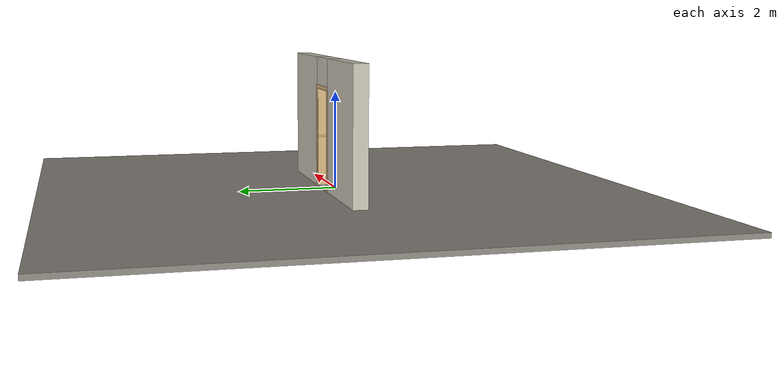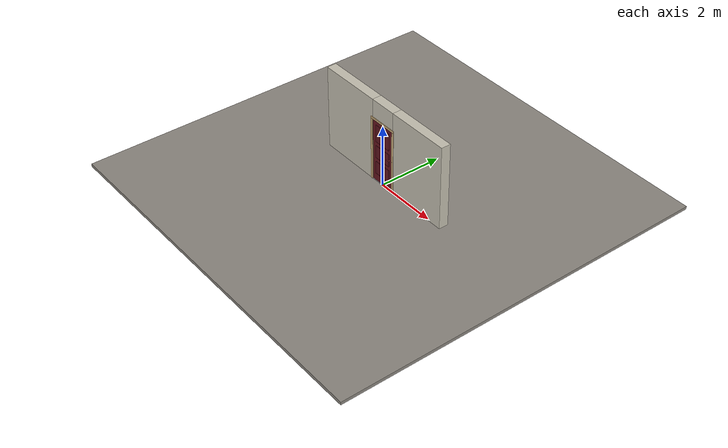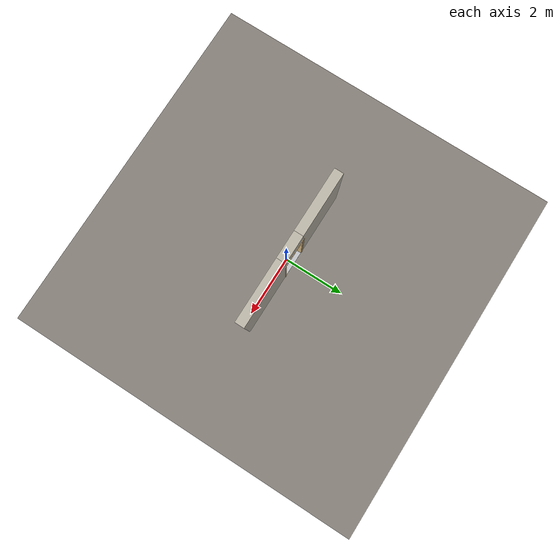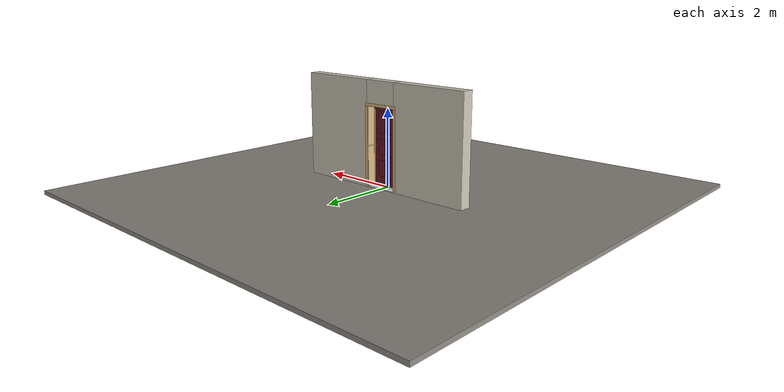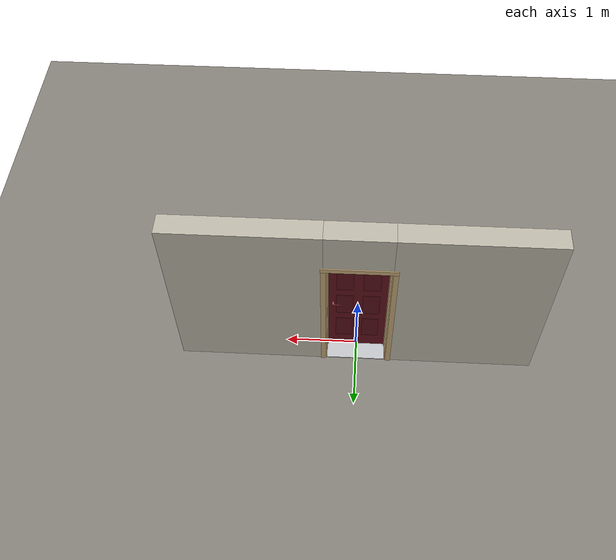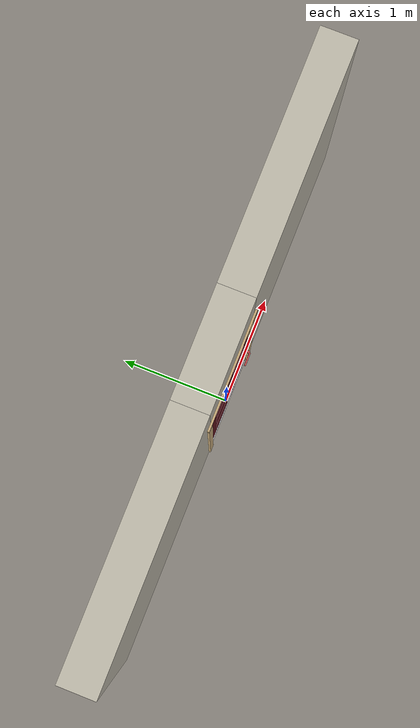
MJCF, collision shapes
<?xml version="1.0" ?>
<mujoco model="db0824_swing_single_full">
  <compiler angle="radian" meshdir="../../hardware" texturedir="../../textures" autolimits="true" inertiafromgeom="false"/>
  <option timestep="0.002" integrator="implicitfast" cone="elliptic" impratio="10" noslip_iterations="3">
    <flag multiccd="enable"/>
  </option>
  <size memory="16M"/>
  <default>
    <geom condim="4" solref="0.005 1" solimp="0.95 0.99 0.001"/>
    <joint solreflimit="0.005 1" solimplimit="0.95 0.99 0.001"/>
    <tendon solreflimit="0.005 1"/>
    <equality solref="0.002 1"/>
  </default>
  <visual>
    <headlight ambient="0.4 0.4 0.4" diffuse="0.7 0.7 0.7" specular="0.2 0.2 0.2"/>
    <quality shadowsize="4096"/>
    <map znear="0.01" zfar="60"/>
  </visual>
  <asset>
    <mesh name="hinge_e22b26c0c1" file="hinge_e22b26c0c1.obj"/>
    <mesh name="hinge_jamb_e1d088f8dc" file="hinge_jamb_e1d088f8dc.obj"/>
    <mesh name="house_numbers_ad0a8e8be0" file="house_numbers_ad0a8e8be0.obj"/>
    <mesh name="lever_57205841c3" file="lever_57205841c3.obj"/>
    <material name="mat_floor" rgba="0.55 0.53 0.5 1" specular="0.2" shininess="0.15" reflectance="0"/>
    <material name="mat_wall" rgba="0.78 0.76 0.7 1" specular="0.2" shininess="0.1" reflectance="0"/>
    <material name="mat_leaf" rgba="0.4 0.08 0.12 1" specular="0.23" shininess="0.49" reflectance="0.02"/>
    <material name="mat_leaf_panel" rgba="0.368 0.074 0.11 1" specular="0.23" shininess="0.49" reflectance="0.02"/>
    <material name="mat_hinge" rgba="0.45 0.3 0.22 1" specular="0.5" shininess="0.1" reflectance="0.2"/>
    <material name="mat_op_black_matte_metal" rgba="0.05 0.05 0.05 1" specular="0.38" shininess="0.3" reflectance="0.12"/>
    <material name="mat_trim" rgba="0.85 0.66 0.3 1" specular="0.8" shininess="0.75" reflectance="0.4"/>
    <material name="mat_bolt" rgba="0.85 0.66 0.3 1" specular="0.8" shininess="0.75" reflectance="0.4"/>
    <material name="mat_frame" rgba="0.82 0.7 0.5 1" specular="0.2" shininess="0.45" reflectance="0"/>
    <material name="mat_seal" rgba="0.1 0.1 0.1 1" specular="0.2" shininess="0.1" reflectance="0"/>
    <material name="mat_threshold" rgba="0.8 0.81 0.83 1" specular="0.8" shininess="0.6" reflectance="0.4"/>
    <material name="mat_numbers" rgba="0.05 0.05 0.05 1" specular="0.38" shininess="0.3" reflectance="0.12"/>
    <material name="mat_drip" rgba="0.8 0.81 0.83 1" specular="0.8" shininess="0.6" reflectance="0.4"/>
    <texture name="skybox" type="skybox" builtin="gradient" rgb1="0.6 0.7 0.85" rgb2="0.9 0.92 0.95" width="256" height="256"/>
  </asset>
  <worldbody>
    <light name="sun" pos="1.5 -2.5 4" dir="-0.3 0.5 -0.8" directional="true" diffuse="0.8 0.8 0.8" specular="0.3 0.3 0.3" castshadow="true"/>
    <light name="fill" pos="-1.5 2.5 3" dir="0.3 -0.5 -0.7" directional="true" diffuse="0.35 0.35 0.4" castshadow="false"/>
    <camera name="robot_view" pos="0 -2.421187 1.734312" xyaxes="1 0 0 0 0.26963 0.962964" fovy="52"/>
    <camera name="far_view" pos="0 2.663187 1.734312" xyaxes="-1 0 0 0 -0.26963 0.962964" fovy="52"/>
    <camera name="iso" pos="1.932062 -2.014438 2.141063" xyaxes="0.741536 0.670913 0 -0.242917 0.268487 0.932151" fovy="46"/>
    <camera name="detail_handle" pos="0.4195 -0.877 1.33" xyaxes="0.97561 0.219512 0 -0.070934 0.315262 0.94635" fovy="38"/>
    <geom name="floor" type="box" size="6 6 0.05" pos="0 0 -0.05" material="mat_floor" group="0" contype="1" conaffinity="1" friction="0.8 0.005 0.0001" density="2400"/>
    <geom name="wall_left" type="box" size="1.03525 0.15 1.35" pos="-1.46475 0.121 1.35" material="mat_wall" group="0" contype="1" conaffinity="1" friction="0.6 0.005 0.0001" density="800"/>
    <geom name="wall_right" type="box" size="1.02025 0.15 1.35" pos="1.47975 0.121 1.35" material="mat_wall" group="0" contype="1" conaffinity="1" friction="0.6 0.005 0.0001" density="800"/>
    <geom name="wall_header" type="box" size="0.4445 0.15 0.303" pos="0.015 0.121 2.397" material="mat_wall" group="0" contype="1" conaffinity="1" friction="0.6 0.005 0.0001" density="800"/>
    <geom name="hinge_0_jamb" type="mesh" mesh="hinge_jamb_e1d088f8dc" pos="-0.4075 -0.029 0.267" material="mat_hinge" group="1" contype="0" conaffinity="0" density="7850"/>
    <geom name="hinge_1_jamb" type="mesh" mesh="hinge_jamb_e1d088f8dc" pos="-0.4075 -0.029 1.029" material="mat_hinge" group="1" contype="0" conaffinity="0" density="7850"/>
    <geom name="hinge_2_jamb" type="mesh" mesh="hinge_jamb_e1d088f8dc" pos="-0.4075 -0.029 1.861" material="mat_hinge" group="1" contype="0" conaffinity="0" density="7850"/>
    <geom name="jamb_hinge" type="box" size="0.0095 0.15 1.0225" pos="-0.42 0.121 1.0225" material="mat_frame" group="0" contype="1" conaffinity="1" friction="0.6 0.005 0.0001" density="400"/>
    <geom name="strike_1050_wall_n" type="box" size="0.0245 0.131575 0.0167" pos="0.435 0.139425 1.05" material="mat_frame" group="0" contype="1" conaffinity="1" friction="0.6 0.005 0.0001" density="400"/>
    <geom name="strike_1050_wall_p" type="box" size="0.0245 0.008 0.0167" pos="0.435 -0.01585 1.05" material="mat_frame" group="0" contype="1" conaffinity="1" friction="0.6 0.005 0.0001" density="400"/>
    <geom name="strike_1050_ramp" type="box" size="0.0245 0.01649 0.0167" pos="0.439636 -0.028673 1.05" quat="0.977148 0 0 0.212558" material="mat_frame" group="0" contype="1" conaffinity="1" friction="0.12 0.005 0.0001" density="400"/>
    <geom name="strike_1050_back" type="box" size="0.01615 0.00785 0.0167" pos="0.44335 0 1.05" material="mat_frame" group="0" contype="1" conaffinity="1" friction="0.6 0.005 0.0001" density="400"/>
    <geom name="jamb_strike_0" type="box" size="0.0245 0.15 0.51665" pos="0.435 0.121 0.51665" material="mat_frame" group="0" contype="1" conaffinity="1" friction="0.6 0.005 0.0001" density="400"/>
    <geom name="jamb_strike_1" type="box" size="0.0245 0.15 0.48915" pos="0.435 0.121 1.55585" material="mat_frame" group="0" contype="1" conaffinity="1" friction="0.6 0.005 0.0001" density="400"/>
    <geom name="jamb_head" type="box" size="0.4445 0.15 0.0095" pos="0.015 0.121 2.0545" material="mat_frame" group="0" contype="1" conaffinity="1" friction="0.6 0.005 0.0001" density="400"/>
    <geom name="head_stud" type="box" size="0.4445 0.15 0.015" pos="0.015 0.121 2.079" material="mat_wall" group="0" contype="1" conaffinity="1" friction="0.6 0.005 0.0001" density="500"/>
    <geom name="stop_hinge" type="box" size="0.0055 0.016 1.0225" pos="-0.405 0.0385 1.0225" material="mat_frame" group="0" contype="1" conaffinity="1" friction="0.6 0.005 0.0001" density="400"/>
    <geom name="stop_strike" type="box" size="0.0055 0.016 1.0225" pos="0.405 0.0385 1.0225" material="mat_frame" group="0" contype="1" conaffinity="1" friction="0.6 0.005 0.0001" density="400"/>
    <geom name="stop_head" type="box" size="0.4105 0.016 0.0055" pos="0 0.0385 2.0395" material="mat_frame" group="0" contype="1" conaffinity="1" friction="0.6 0.005 0.0001" density="400"/>
    <geom name="seal_hinge" type="box" size="0.004 0.003 1.0225" pos="-0.4075 0.025 1.0225" material="mat_seal" group="1" contype="0" conaffinity="0" density="1100"/>
    <geom name="seal_strike" type="box" size="0.004 0.003 1.0225" pos="0.4075 0.025 1.0225" material="mat_seal" group="1" contype="0" conaffinity="0" density="1100"/>
    <geom name="seal_head" type="box" size="0.3905 0.003 0.008" pos="0 0.025 2.033" material="mat_seal" group="1" contype="0" conaffinity="0" density="1100"/>
    <geom name="casing_l_n" type="box" size="0.035 0.008 1.032" pos="-0.4595 -0.037 1.0225" material="mat_frame" group="2" contype="0" conaffinity="0" density="400"/>
    <geom name="casing_r_n" type="box" size="0.035 0.008 1.032" pos="0.4595 -0.037 1.0225" material="mat_frame" group="2" contype="0" conaffinity="0" density="400"/>
    <geom name="casing_h_n" type="box" size="0.4945 0.008 0.035" pos="0 -0.037 2.094" material="mat_frame" group="2" contype="0" conaffinity="0" density="400"/>
    <geom name="casing_l_p" type="box" size="0.035 0.008 1.032" pos="-0.4595 0.279 1.0225" material="mat_frame" group="2" contype="0" conaffinity="0" density="400"/>
    <geom name="casing_r_p" type="box" size="0.035 0.008 1.032" pos="0.4595 0.279 1.0225" material="mat_frame" group="2" contype="0" conaffinity="0" density="400"/>
    <geom name="casing_h_p" type="box" size="0.4945 0.008 0.035" pos="0 0.279 2.094" material="mat_frame" group="2" contype="0" conaffinity="0" density="400"/>
    <geom name="threshold" type="box" size="0.4295 0.15 0.0065" pos="0 0.121 0.0065" material="mat_threshold" group="0" contype="1" conaffinity="1" friction="0.5 0.005 0.0001" density="2700"/>
    <geom name="weather_drip_cap" type="box" size="0.4605 0.03 0.008" pos="0 0.03 2.09" material="mat_drip" group="2" contype="0" conaffinity="0" density="2700"/>
    <geom name="weather_drip_cap_bracket" type="box" size="0.13815 0.015 0.005" pos="0 -0.0145 2.09" material="mat_drip" group="2" contype="0" conaffinity="0" density="7850"/>
    <site name="approach_point" pos="0 -1.5 0" quat="1 0 0 0" size="0.05" rgba="0.2 0.9 0.2 0.5" group="4"/>
    <site name="goal_point" pos="0 1.5 0" quat="1 0 0 0" size="0.05" rgba="0.2 0.9 0.2 0.5" group="4"/>
    <site name="door_plane_center" pos="0 0 1.0225" quat="1 0 0 0" size="0.02" rgba="0.2 0.9 0.2 0.5" group="4"/>
    <body name="leaf" pos="-0.4105 0 0">
      <inertial pos="0.396696 -0.000694 1.032957" mass="22.946411" quat="-0.499315 0.501118 -0.49875 -0.500813" diaginertia="1.341359267 7.904297457 9.237622798"/>
      <joint name="leaf_hinge" type="hinge" axis="0 0 -1" pos="0.003 -0.029 0" limited="true" range="0 1.745329" solreflimit="0.02 1" damping="0.210326" frictionloss="3.521929" armature="0.02"/>
      <geom name="leaf_slab" type="box" size="0.4065 0.022 1.012" pos="0.4095 0 1.029" material="mat_leaf" group="0" contype="1" conaffinity="1" friction="0.4 0.005 0.0001" density="1"/>
      <geom name="leaf_panel_0_n" type="box" size="0.11575 0.003 0.208024" pos="0.22875 -0.025 0.467664" material="mat_leaf_panel" group="1" contype="0" conaffinity="0" density="1"/>
      <geom name="leaf_panel_0_p" type="box" size="0.11575 0.003 0.208024" pos="0.22875 0.025 0.467664" material="mat_leaf_panel" group="1" contype="0" conaffinity="0" density="1"/>
      <geom name="leaf_panel_1_n" type="box" size="0.11575 0.003 0.208024" pos="0.59025 -0.025 0.467664" material="mat_leaf_panel" group="1" contype="0" conaffinity="0" density="1"/>
      <geom name="leaf_panel_1_p" type="box" size="0.11575 0.003 0.208024" pos="0.59025 0.025 0.467664" material="mat_leaf_panel" group="1" contype="0" conaffinity="0" density="1"/>
      <geom name="leaf_panel_2_n" type="box" size="0.11575 0.003 0.208024" pos="0.22875 -0.025 1.013712" material="mat_leaf_panel" group="1" contype="0" conaffinity="0" density="1"/>
      <geom name="leaf_panel_2_p" type="box" size="0.11575 0.003 0.208024" pos="0.22875 0.025 1.013712" material="mat_leaf_panel" group="1" contype="0" conaffinity="0" density="1"/>
      <geom name="leaf_panel_3_n" type="box" size="0.11575 0.003 0.208024" pos="0.59025 -0.025 1.013712" material="mat_leaf_panel" group="1" contype="0" conaffinity="0" density="1"/>
      <geom name="leaf_panel_3_p" type="box" size="0.11575 0.003 0.208024" pos="0.59025 0.025 1.013712" material="mat_leaf_panel" group="1" contype="0" conaffinity="0" density="1"/>
      <geom name="leaf_panel_4_n" type="box" size="0.11575 0.003 0.284032" pos="0.22875 -0.025 1.635768" material="mat_leaf_panel" group="1" contype="0" conaffinity="0" density="1"/>
      <geom name="leaf_panel_4_p" type="box" size="0.11575 0.003 0.284032" pos="0.22875 0.025 1.635768" material="mat_leaf_panel" group="1" contype="0" conaffinity="0" density="1"/>
      <geom name="leaf_panel_5_n" type="box" size="0.11575 0.003 0.284032" pos="0.59025 -0.025 1.635768" material="mat_leaf_panel" group="1" contype="0" conaffinity="0" density="1"/>
      <geom name="leaf_panel_5_p" type="box" size="0.11575 0.003 0.284032" pos="0.59025 0.025 1.635768" material="mat_leaf_panel" group="1" contype="0" conaffinity="0" density="1"/>
      <geom name="hinge_0" type="mesh" mesh="hinge_e22b26c0c1" pos="0.003 -0.029 0.267" material="mat_hinge" group="1" contype="0" conaffinity="0" density="7850"/>
      <geom name="hinge_1" type="mesh" mesh="hinge_e22b26c0c1" pos="0.003 -0.029 1.029" material="mat_hinge" group="1" contype="0" conaffinity="0" density="7850"/>
      <geom name="hinge_2" type="mesh" mesh="hinge_e22b26c0c1" pos="0.003 -0.029 1.861" material="mat_hinge" group="1" contype="0" conaffinity="0" density="7850"/>
      <geom name="leaf_latch_bolt_faceplate" type="box" size="0.0006 0.01235 0.0267" pos="0.8154 0 1.05" material="mat_bolt" group="1" contype="0" conaffinity="0" density="8500"/>
      <geom name="house_numbers" type="mesh" mesh="house_numbers_ad0a8e8be0" pos="0.4095 -0.022 1.691" quat="0.707107 0.707107 0 0" material="mat_numbers" group="2" contype="0" conaffinity="0" density="1000"/>
      <site name="leaf_edge_mid" pos="0.816 0 1.012" quat="1 0 0 0" size="0.02" rgba="0.2 0.9 0.2 0.5" group="4"/>
      <body name="leaf_handle" pos="0.746 0 1.05">
        <inertial pos="-0.018425 0 0" mass="0.806444" quat="0 0.707107 0.707107 0" diaginertia="0.001006485 0.002593405 0.00349528"/>
        <joint name="leaf_handle_hinge" type="hinge" axis="0 -1 0" limited="true" range="0 0.87" damping="0.212417" frictionloss="0.042" stiffness="1" springref="-0.35" armature="0.01"/>
        <geom name="leaf_handle_spindle" type="cylinder" size="0.006 0.03" pos="0 0 0" quat="0.707107 -0.707107 0 0" material="mat_op_black_matte_metal" group="1" contype="0" conaffinity="0" density="7850"/>
        <geom name="leaf_handle_lever_n" type="mesh" mesh="lever_57205841c3" pos="0 -0.022 0" quat="0.707107 0.707107 0 0" material="mat_op_black_matte_metal" group="1" contype="0" conaffinity="0" density="3000"/>
        <geom name="leaf_handle_lever_col_n" type="capsule" size="0.007 0.053" pos="-0.06 -0.077 0" quat="0.707107 0 -0.707107 0" material="mat_op_black_matte_metal" group="3" contype="1" conaffinity="1" rgba="0.8 0.3 0.3 0.25" friction="0.7 0.01 0.0001" density="3000"/>
        <geom name="leaf_handle_hub_col_n" type="cylinder" size="0.012 0.022" pos="0 -0.052 0" quat="0.707107 -0.707107 0 0" material="mat_op_black_matte_metal" group="3" contype="1" conaffinity="1" rgba="0.8 0.3 0.3 0.25" friction="0.6 0.005 0.0001" density="3000"/>
        <geom name="leaf_handle_lever_p" type="mesh" mesh="lever_57205841c3" pos="0 0.022 0" quat="-0.707107 0.707107 0 0" material="mat_op_black_matte_metal" group="1" contype="0" conaffinity="0" density="3000"/>
        <geom name="leaf_handle_lever_col_p" type="capsule" size="0.007 0.053" pos="-0.06 0.077 0" quat="0.707107 0 -0.707107 0" material="mat_op_black_matte_metal" group="3" contype="1" conaffinity="1" rgba="0.8 0.3 0.3 0.25" friction="0.7 0.01 0.0001" density="3000"/>
        <geom name="leaf_handle_hub_col_p" type="cylinder" size="0.012 0.022" pos="0 0.052 0" quat="0.707107 -0.707107 0 0" material="mat_op_black_matte_metal" group="3" contype="1" conaffinity="1" rgba="0.8 0.3 0.3 0.25" friction="0.6 0.005 0.0001" density="3000"/>
        <site name="leaf_handle_grip_n" pos="-0.096 -0.077 0" quat="1 0 0 0" size="0.012" rgba="0.2 0.9 0.2 0.5" group="4"/>
        <site name="leaf_handle_grip_p" pos="-0.096 0.077 0" quat="1 0 0 0" size="0.012" rgba="0.2 0.9 0.2 0.5" group="4"/>
      </body>
      <body name="leaf_latch_bolt" pos="0.816 0 1.05">
        <inertial pos="-0.00865 0 0" mass="0.041419" quat="0.92388 -0.382683 0 0" diaginertia="0.000000798 0.000005598 0.000005598"/>
        <joint name="leaf_latch_bolt_slide" type="slide" axis="-1 0 0" limited="true" range="0 0.0127" damping="2" frictionloss="0.3" stiffness="300" springref="-0.008333" armature="0.1"/>
        <geom name="leaf_latch_bolt_capsule" type="capsule" size="0.00635 0.015" pos="-0.00865 0 0" quat="0.707107 0 0.707107 0" material="mat_bolt" group="0" contype="1" conaffinity="1" friction="0.2 0.005 0.0001" density="8500"/>
      </body>
    </body>
  </worldbody>
  <tendon>
    <fixed name="leaf_latch_bolt_coupling" limited="true" range="0 10">
      <joint joint="leaf_latch_bolt_slide" coef="1"/>
      <joint joint="leaf_handle_hinge" coef="-0.015679"/>
    </fixed>
  </tendon>
  <sensor>
    <jointpos name="leaf_hinge_pos" joint="leaf_hinge"/>
    <jointvel name="leaf_hinge_vel" joint="leaf_hinge"/>
    <jointpos name="leaf_handle_hinge_pos" joint="leaf_handle_hinge"/>
    <jointvel name="leaf_handle_hinge_vel" joint="leaf_handle_hinge"/>
    <jointpos name="leaf_latch_bolt_slide_pos" joint="leaf_latch_bolt_slide"/>
    <jointvel name="leaf_latch_bolt_slide_vel" joint="leaf_latch_bolt_slide"/>
  </sensor>
</mujoco>
